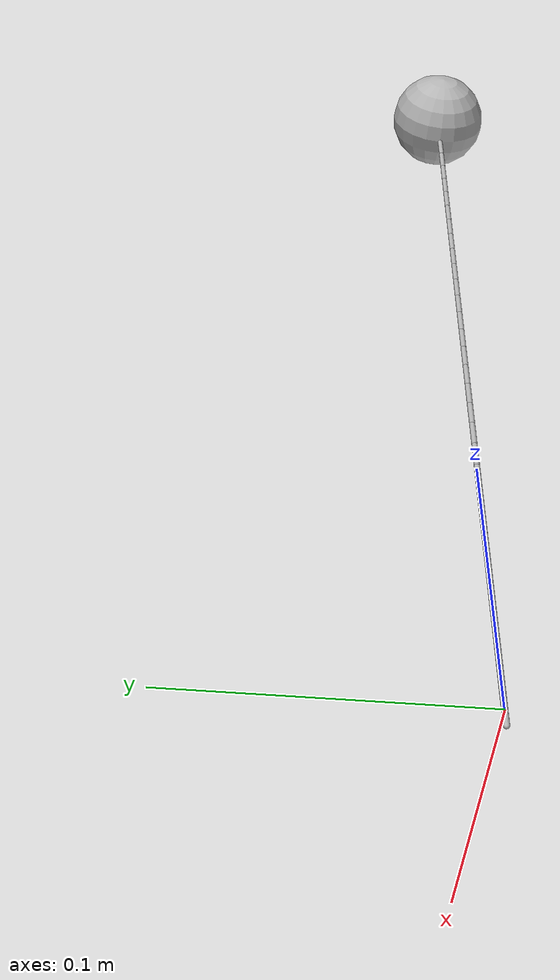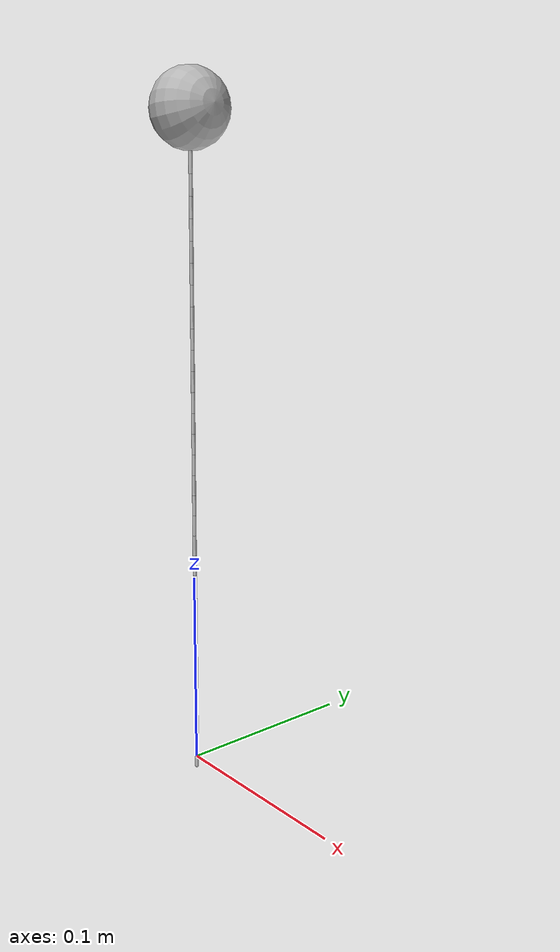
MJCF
<mujoco model="ball_on_string">

    <option integrator="Euler" timestep="0.002"/>
    <compiler coordinate="local" angle="radian" meshdir="meshes/"/>

    <default>
        <default class="joint_y">
            <joint pos="-0.00535 0 0" axis="0 1 0" group="3" limited="false" damping="0.0001" frictionloss="0"/>
        </default>

        <default class="joint_z">
            <joint pos="-0.00535 0 0" axis="0 0 1" group="3" limited="false" damping="0.0001" frictionloss="0"/>
        </default>

        <default class="chain_piece">
            <geom size="0.001 0.00427" quat="0.707107 0 0.707107 0" type="capsule" contype="0" conaffinity="1"
                group="3" rgba="0.5 0.6 0.7 1" density="0"/>
        </default>

        <default class="ball">
            <geom type="sphere" size="0.02" mass="0.021" contype="0" conaffinity="1" group="3" rgba="0.5 0.6 0.7 1"/>
        </default>

        <default class="chain_piece_visual">
            <geom size="0.001 0.00535" quat="0.707107 0 0.707107 0" type="capsule" contype="0" conaffinity="0"
                group="2" rgba="0.7 0.7 0.7 1" density="0"/>
        </default>

        <default class="ball_visual">
            <geom type="sphere" size="0.02" contype="0" conaffinity="0" group="2" rgba="0.7 0.7 0.7 1" density="0"/>
        </default>
    </default>

    <worldbody>
        <body name="B0" euler="0 -1.57 0">
            <inertial pos="0 0 0" quat="0.707107 0 0.707107 0" mass="7.4927e-05" diaginertia="5.87e-10 5.87e-10 3.74635e-11"/>
            <joint name="J0_0" class="joint_y"/>
            <joint name="J1_0" class="joint_z"/>
            <geom name="G0" class="chain_piece"/>
            <geom name="G0_vis" class="chain_piece_visual"/>

            <body name="B1" pos="0.0107 0 0">
                <inertial pos="0 0 0" quat="0.707107 0 0.707107 0" mass="7.4927e-05" diaginertia="5.87e-10 5.87e-10 3.74635e-11"/>
                <joint name="J0_1" class="joint_y"/>
                <joint name="J1_1" class="joint_z"/>
                <geom name="G1" class="chain_piece"/>
                <geom name="G1_vis" class="chain_piece_visual"/>

                <body name="B2" pos="0.0107 0 0">
                    <inertial pos="0 0 0" quat="0.707107 0 0.707107 0" mass="7.4927e-05" diaginertia="5.87e-10 5.87e-10 3.74635e-11"/>
                    <joint name="J0_2" class="joint_y"/>
                    <joint name="J1_2" class="joint_z"/>
                    <geom name="G2" class="chain_piece"/>
                    <geom name="G2_vis" class="chain_piece_visual"/>

                    <body name="B3" pos="0.0107 0 0">
                        <inertial pos="0 0 0" quat="0.707107 0 0.707107 0" mass="7.4927e-05" diaginertia="5.87e-10 5.87e-10 3.74635e-11"/>
                        <joint name="J0_3" class="joint_y"/>
                        <joint name="J1_3" class="joint_z"/>
                        <geom name="G3" class="chain_piece"/>
                        <geom name="G3_vis" class="chain_piece_visual"/>

                        <body name="B4" pos="0.0107 0 0">
                            <inertial pos="0 0 0" quat="0.707107 0 0.707107 0" mass="7.4927e-05" diaginertia="5.87e-10 5.87e-10 3.74635e-11"/>
                            <joint name="J0_4" class="joint_y"/>
                            <joint name="J1_4" class="joint_z"/>
                            <geom name="G4" class="chain_piece"/>
                            <geom name="G4_vis" class="chain_piece_visual"/>

                            <body name="B5" pos="0.0107 0 0">
                                <inertial pos="0 0 0" quat="0.707107 0 0.707107 0" mass="7.4927e-05" diaginertia="5.87e-10 5.87e-10 3.74635e-11"/>
                                <joint name="J0_5" class="joint_y"/>
                                <joint name="J1_5" class="joint_z"/>
                                <geom name="G5" class="chain_piece"/>
                                <geom name="G5_vis" class="chain_piece_visual"/>

                                <body name="B6" pos="0.0107 0 0">
                                    <inertial pos="0 0 0" quat="0.707107 0 0.707107 0" mass="7.4927e-05" diaginertia="5.87e-10 5.87e-10 3.74635e-11"/>
                                    <joint name="J0_6" class="joint_y"/>
                                    <joint name="J1_6" class="joint_z"/>
                                    <geom name="G6" class="chain_piece"/>
                                    <geom name="G6_vis" class="chain_piece_visual"/>

                                    <body name="B7" pos="0.0107 0 0">
                                        <inertial pos="0 0 0" quat="0.707107 0 0.707107 0" mass="7.4927e-05" diaginertia="5.87e-10 5.87e-10 3.74635e-11"/>
                                        <joint name="J0_7" class="joint_y"/>
                                        <joint name="J1_7" class="joint_z"/>
                                        <geom name="G7" class="chain_piece"/>
                                        <geom name="G7_vis" class="chain_piece_visual"/>

                                        <body name="B8" pos="0.0107 0 0">
                                            <inertial pos="0 0 0" quat="0.707107 0 0.707107 0" mass="7.4927e-05" diaginertia="5.87e-10 5.87e-10 3.74635e-11"/>
                                            <joint name="J0_8" class="joint_y"/>
                                            <joint name="J1_8" class="joint_z"/>
                                            <geom name="G8" class="chain_piece"/>
                                            <geom name="G8_vis" class="chain_piece_visual"/>

                                            <body name="B9" pos="0.0107 0 0">
                                                <inertial pos="0 0 0" quat="0.707107 0 0.707107 0" mass="7.4927e-05" diaginertia="5.87e-10 5.87e-10 3.74635e-11"/>
                                                <joint name="J0_9" class="joint_y"/>
                                                <joint name="J1_9" class="joint_z"/>
                                                <geom name="G9" class="chain_piece"/>
                                                <geom name="G9_vis" class="chain_piece_visual"/>

                                                <body name="B10" pos="0.0107 0 0">
                                                    <inertial pos="0 0 0" quat="0.707107 0 0.707107 0" mass="7.4927e-05" diaginertia="5.87e-10 5.87e-10 3.74635e-11"/>
                                                    <joint name="J0_10" class="joint_y"/>
                                                    <joint name="J1_10" class="joint_z"/>
                                                    <geom name="G10" class="chain_piece"/>
                                                    <geom name="G10_vis" class="chain_piece_visual"/>

                                                    <body name="B11" pos="0.0107 0 0">
                                                        <inertial pos="0 0 0" quat="0.707107 0 0.707107 0" mass="7.4927e-05" diaginertia="5.87e-10 5.87e-10 3.74635e-11"/>
                                                        <joint name="J0_11" class="joint_y"/>
                                                        <joint name="J1_11" class="joint_z"/>
                                                        <geom name="G11" class="chain_piece"/>
                                                        <geom name="G11_vis" class="chain_piece_visual"/>

                                                        <body name="B12" pos="0.0107 0 0">
                                                            <inertial pos="0 0 0" quat="0.707107 0 0.707107 0" mass="7.4927e-05" diaginertia="5.87e-10 5.87e-10 3.74635e-11"/>
                                                            <joint name="J0_12" class="joint_y"/>
                                                            <joint name="J1_12" class="joint_z"/>
                                                            <geom name="G12" class="chain_piece"/>
                                                            <geom name="G12_vis" class="chain_piece_visual"/>

                                                            <body name="B13" pos="0.0107 0 0">
                                                                <inertial pos="0 0 0" quat="0.707107 0 0.707107 0" mass="7.4927e-05" diaginertia="5.87e-10 5.87e-10 3.74635e-11"/>
                                                                <joint name="J0_13" class="joint_y"/>
                                                                <joint name="J1_13" class="joint_z"/>
                                                                <geom name="G13" class="chain_piece"/>
                                                                <geom name="G13_vis" class="chain_piece_visual"/>

                                                                <body name="B14" pos="0.0107 0 0">
                                                                    <inertial pos="0 0 0" quat="0.707107 0 0.707107 0" mass="7.4927e-05" diaginertia="5.87e-10 5.87e-10 3.74635e-11"/>
                                                                    <joint name="J0_14" class="joint_y"/>
                                                                    <joint name="J1_14" class="joint_z"/>
                                                                    <geom name="G14" class="chain_piece"/>
                                                                    <geom name="G14_vis" class="chain_piece_visual"/>

                                                                    <body name="B15" pos="0.0107 0 0">
                                                                        <inertial pos="0 0 0" quat="0.707107 0 0.707107 0" mass="7.4927e-05" diaginertia="5.87e-10 5.87e-10 3.74635e-11"/>
                                                                        <joint name="J0_15" class="joint_y"/>
                                                                        <joint name="J1_15" class="joint_z"/>
                                                                        <geom name="G15" class="chain_piece"/>
                                                                        <geom name="G15_vis" class="chain_piece_visual"/>

                                                                        <body name="B16" pos="0.0107 0 0">
                                                                            <inertial pos="0 0 0" quat="0.707107 0 0.707107 0" mass="7.4927e-05" diaginertia="5.87e-10 5.87e-10 3.74635e-11"/>
                                                                            <joint name="J0_16" class="joint_y"/>
                                                                            <joint name="J1_16" class="joint_z"/>
                                                                            <geom name="G16" class="chain_piece"/>
                                                                            <geom name="G16_vis" class="chain_piece_visual"/>

                                                                            <body name="B17" pos="0.0107 0 0">
                                                                                <inertial pos="0 0 0" quat="0.707107 0 0.707107 0" mass="7.4927e-05" diaginertia="5.87e-10 5.87e-10 3.74635e-11"/>
                                                                                <joint name="J0_17" class="joint_y"/>
                                                                                <joint name="J1_17" class="joint_z"/>
                                                                                <geom name="G17" class="chain_piece"/>
                                                                                <geom name="G17_vis" class="chain_piece_visual"/>

                                                                                <body name="B18" pos="0.0107 0 0">
                                                                                    <inertial pos="0 0 0" quat="0.707107 0 0.707107 0" mass="7.4927e-05" diaginertia="5.87e-10 5.87e-10 3.74635e-11"/>
                                                                                    <joint name="J0_18" class="joint_y"/>
                                                                                    <joint name="J1_18" class="joint_z"/>
                                                                                    <geom name="G18" class="chain_piece"/>
                                                                                    <geom name="G18_vis" class="chain_piece_visual"/>

                                                                                    <body name="B19" pos="0.0107 0 0">
                                                                                        <inertial pos="0 0 0" quat="0.707107 0 0.707107 0" mass="7.4927e-05" diaginertia="5.87e-10 5.87e-10 3.74635e-11"/>
                                                                                        <joint name="J0_19" class="joint_y"/>
                                                                                        <joint name="J1_19" class="joint_z"/>
                                                                                        <geom name="G19" class="chain_piece"/>
                                                                                        <geom name="G19_vis" class="chain_piece_visual"/>

                                                                                        <body name="B20" pos="0.0107 0 0">
                                                                                            <inertial pos="0 0 0" quat="0.707107 0 0.707107 0" mass="7.4927e-05" diaginertia="5.87e-10 5.87e-10 3.74635e-11"/>
                                                                                            <joint name="J0_20" class="joint_y"/>
                                                                                            <joint name="J1_20" class="joint_z"/>
                                                                                            <geom name="G20" class="chain_piece"/>
                                                                                            <geom name="G20_vis" class="chain_piece_visual"/>

                                                                                            <body name="B21" pos="0.0107 0 0">
                                                                                                <inertial pos="0 0 0" quat="0.707107 0 0.707107 0" mass="7.4927e-05" diaginertia="5.87e-10 5.87e-10 3.74635e-11"/>
                                                                                                <joint name="J0_21" class="joint_y"/>
                                                                                                <joint name="J1_21" class="joint_z"/>
                                                                                                <geom name="G21" class="chain_piece"/>
                                                                                                <geom name="G21_vis" class="chain_piece_visual"/>

                                                                                                <body name="B22" pos="0.0107 0 0">
                                                                                                    <inertial pos="0 0 0" quat="0.707107 0 0.707107 0" mass="7.4927e-05" diaginertia="5.87e-10 5.87e-10 3.74635e-11"/>
                                                                                                    <joint name="J0_22" class="joint_y"/>
                                                                                                    <joint name="J1_22" class="joint_z"/>
                                                                                                    <geom name="G22" class="chain_piece"/>
                                                                                                    <geom name="G22_vis" class="chain_piece_visual"/>

                                                                                                    <body name="B23" pos="0.0107 0 0">
                                                                                                        <inertial pos="0 0 0" quat="0.707107 0 0.707107 0" mass="7.4927e-05" diaginertia="5.87e-10 5.87e-10 3.74635e-11"/>
                                                                                                        <joint name="J0_23" class="joint_y"/>
                                                                                                        <joint name="J1_23" class="joint_z"/>
                                                                                                        <geom name="G23" class="chain_piece"/>
                                                                                                        <geom name="G23_vis" class="chain_piece_visual"/>

                                                                                                        <body name="B24" pos="0.0107 0 0">
                                                                                                            <inertial pos="0 0 0" quat="0.707107 0 0.707107 0" mass="7.4927e-05" diaginertia="5.87e-10 5.87e-10 3.74635e-11"/>
                                                                                                            <joint name="J0_24" class="joint_y"/>
                                                                                                            <joint name="J1_24" class="joint_z"/>
                                                                                                            <geom name="G24" class="chain_piece"/>
                                                                                                            <geom name="G24_vis" class="chain_piece_visual"/>

                                                                                                            <body name="B25" pos="0.0107 0 0">
                                                                                                                <inertial pos="0 0 0" quat="0.707107 0 0.707107 0" mass="7.4927e-05" diaginertia="5.87e-10 5.87e-10 3.74635e-11"/>
                                                                                                                <joint name="J0_25" class="joint_y"/>
                                                                                                                <joint name="J1_25" class="joint_z"/>
                                                                                                                <geom name="G25" class="chain_piece"/>
                                                                                                                <geom name="G25_vis" class="chain_piece_visual"/>

                                                                                                                <body name="B26" pos="0.0107 0 0">
                                                                                                                    <inertial pos="0 0 0" quat="0.707107 0 0.707107 0" mass="7.4927e-05" diaginertia="5.87e-10 5.87e-10 3.74635e-11"/>
                                                                                                                    <joint name="J0_26" class="joint_y"/>
                                                                                                                    <joint name="J1_26" class="joint_z"/>
                                                                                                                    <geom name="G26" class="chain_piece"/>
                                                                                                                    <geom name="G26_vis" class="chain_piece_visual"/>

                                                                                                                    <body name="B27" pos="0.0107 0 0">
                                                                                                                        <inertial pos="0 0 0" quat="0.707107 0 0.707107 0" mass="7.4927e-05" diaginertia="5.87e-10 5.87e-10 3.74635e-11"/>
                                                                                                                        <joint name="J0_27" class="joint_y"/>
                                                                                                                        <joint name="J1_27" class="joint_z"/>
                                                                                                                        <geom name="G27" class="chain_piece"/>
                                                                                                                        <geom name="G27_vis" class="chain_piece_visual"/>

                                                                                                                        <body name="B28" pos="0.0107 0 0">
                                                                                                                            <inertial pos="0 0 0" quat="0.707107 0 0.707107 0" mass="7.4927e-05" diaginertia="5.87e-10 5.87e-10 3.74635e-11"/>
                                                                                                                            <joint name="J0_28" class="joint_y"/>
                                                                                                                            <joint name="J1_28" class="joint_z"/>
                                                                                                                            <geom name="G28" class="chain_piece"/>
                                                                                                                            <geom name="G28_vis" class="chain_piece_visual"/>

                                                                                                                            <body name="B29" pos="0.0107 0 0">
                                                                                                                                <inertial pos="0 0 0" quat="0.707107 0 0.707107 0" mass="7.4927e-05" diaginertia="5.87e-10 5.87e-10 3.74635e-11"/>
                                                                                                                                <joint name="J0_29" class="joint_y"/>
                                                                                                                                <joint name="J1_29" class="joint_z"/>
                                                                                                                                <geom name="G29" class="chain_piece"/>
                                                                                                                                <geom name="G29_vis" class="chain_piece_visual"/>

                                                                                                                                <body name="ball" pos="0.0255 0 0">
                                                                                                                                    <geom class="ball" name="ball_geom"/>
                                                                                                                                    <geom class="ball_visual" name="ball_geom_visual"/>
                                                                                                                                </body>
                                                                                                                            </body>
                                                                                                                        </body>
                                                                                                                    </body>
                                                                                                                </body>
                                                                                                            </body>
                                                                                                        </body>
                                                                                                    </body>
                                                                                                </body>
                                                                                            </body>
                                                                                        </body>
                                                                                    </body>
                                                                                </body>
                                                                            </body>
                                                                        </body>
                                                                    </body>
                                                                </body>
                                                            </body>
                                                        </body>
                                                    </body>
                                                </body>
                                            </body>
                                        </body>
                                    </body>
                                </body>
                            </body>
                        </body>
                    </body>
                </body>
            </body>
        </body>
    </worldbody>
</mujoco>
